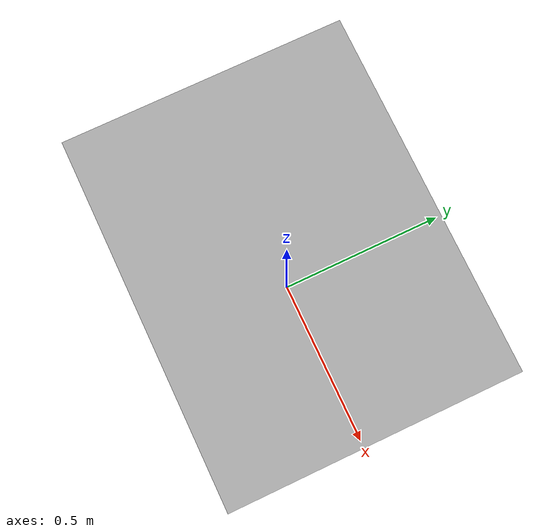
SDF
<?xml version='1.0'?>
<sdf version='1.6'>
  <model name='cardboard_box_large'>
    <link name='link'>
      <inertial>
        <mass>2</mass>
        <inertia>
          <ixx>0.0416667</ixx>
          <ixy>0</ixy>
          <ixz>0</ixz>
          <iyy>0.0566667</iyy>
          <iyz>0</iyz>
          <izz>0.0683333</izz>
        </inertia>
        <pose frame=''>0 0 0 0 -0 0</pose>
      </inertial>
      <self_collide>0</self_collide>
      <enable_wind>0</enable_wind>
      <kinematic>0</kinematic>
      <pose frame=''>0 0 0 0 -0 0</pose>
      <gravity>1</gravity>
      <visual name='visual'>
        <pose frame=''>0 0 -0.15 0 -0 0</pose>
        <geometry>
          <mesh>
            <uri>model://cardboard_box/meshes/cardboard_box.dae</uri>
            <scale>2.5932 2.00745 1.50559</scale>
          </mesh>
        </geometry>
        <transparency>0</transparency>
        <cast_shadows>1</cast_shadows>
        <material>
          <shader type='vertex'>
            <normal_map>__default__</normal_map>
          </shader>
        </material>
      </visual>
      <collision name='collision'>
        <laser_retro>0</laser_retro>
        <max_contacts>10</max_contacts>
        <pose frame=''>0 0 0 0 -0 0</pose>
        <geometry>
          <box>
            <size>1 0.8 0.6</size>
          </box>
        </geometry>
        <surface>
          <friction>
            <ode>
              <mu>1</mu>
              <mu2>1</mu2>
              <fdir1>0 0 0</fdir1>
              <slip1>0</slip1>
              <slip2>0</slip2>
            </ode>
            <torsional>
              <coefficient>1</coefficient>
              <patch_radius>0</patch_radius>
              <surface_radius>0</surface_radius>
              <use_patch_radius>1</use_patch_radius>
              <ode>
                <slip>0</slip>
              </ode>
            </torsional>
          </friction>
          <bounce>
            <restitution_coefficient>0</restitution_coefficient>
            <threshold>1e+06</threshold>
          </bounce>
          <contact>
            <collide_without_contact>0</collide_without_contact>
            <collide_without_contact_bitmask>1</collide_without_contact_bitmask>
            <collide_bitmask>1</collide_bitmask>
            <ode>
              <soft_cfm>0</soft_cfm>
              <soft_erp>0.2</soft_erp>
              <kp>1e+07</kp>
              <kd>1</kd>
              <max_vel>0.1</max_vel>
              <min_depth>0.001</min_depth>
            </ode>
            <bullet>
              <split_impulse>1</split_impulse>
              <split_impulse_penetration_threshold>-0.01</split_impulse_penetration_threshold>
              <soft_cfm>0</soft_cfm>
              <soft_erp>0.2</soft_erp>
              <kp>1e+07</kp>
              <kd>1</kd>
            </bullet>
          </contact>
        </surface>
      </collision>
    </link>
    <static>1</static>
    <allow_auto_disable>1</allow_auto_disable>
  </model>
</sdf>
